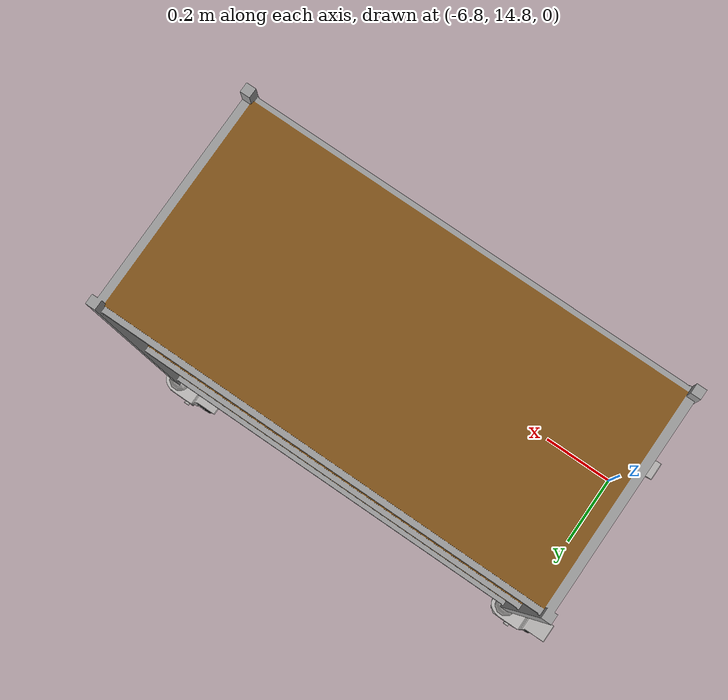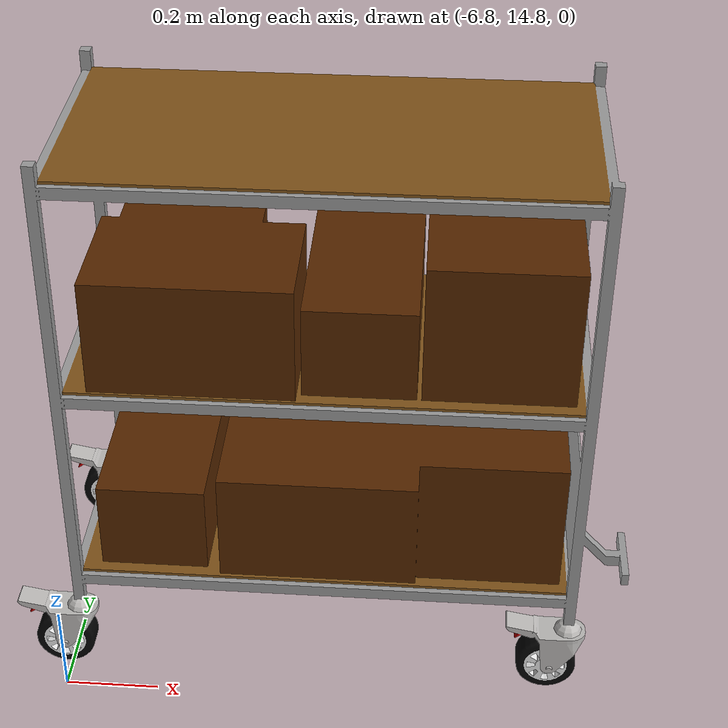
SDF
<sdf version="1.10">
 <world name="warehouse">
  <gravity>0 0 -9.8000000000000007</gravity>
  <physics type="ode">
   <max_step_size>0.01</max_step_size>
   <real_time_factor>1</real_time_factor>
   <real_time_update_rate>1000</real_time_update_rate>
  </physics>
  <plugin filename="gz-sim-physics-system" name="gz::sim::systems::Physics"/>
  <plugin filename="gz-sim-user-commands-system" name="gz::sim::systems::UserCommands"/>
  <plugin filename="gz-sim-scene-broadcaster-system" name="gz::sim::systems::SceneBroadcaster"/>
  <plugin filename="ignition-gazebo-sensors-system" name="gz::sim::systems::Sensors">
   <render_engine>ogre2</render_engine>
  </plugin>
  <plugin filename="gz-sim-imu-system" name="gz::sim::systems::Imu"/>
  <scene>
   <ambient>1 1 1 1</ambient>
   <background>0.300000012 0.699999988 0.899999976 1</background>
   <shadows>false</shadows>
   <grid>false</grid>
  </scene>
  <magnetic_field>5.5644999999999998e-06 2.2875799999999999e-05 -4.2388400000000002e-05</magnetic_field>
  <atmosphere type="adiabatic"/>
  <model name="ground_plane">
   <static>true</static>
   <link name="link">
    <collision name="collision">
     <geometry><plane><normal>0 0 1</normal><size>1 1</size></plane></geometry>
    </collision>
    <inertial>
     <mass>1</mass>
     <inertia><ixx>1</ixx><ixy>0</ixy><ixz>0</ixz><iyy>1</iyy><iyz>0</iyz><izz>1</izz></inertia>
    </inertial>
   </link>
  </model>
  <model name="controllable_camera">
   <pose>10 0 70 -1.5707 1.5707 0</pose>
   <static>true</static>
   <link name="base_link">
    <inertial><mass>0.1</mass><inertia><ixx>0.0001</ixx><iyy>0.0001</iyy><izz>0.0001</izz></inertia></inertial>
    <sensor name="gui_camera" type="rgbd_camera">
     <camera name="camera_front">
      <horizontal_fov>1.0472</horizontal_fov>
      <lens><intrinsics><fx>277.1</fx><fy>277.1</fy><cx>160.5</cx><cy>120.5</cy><s>0</s></intrinsics></lens>
      <distortion><k1>0.0</k1><k2>0.0</k2><k3>0.0</k3><p1>0.0</p1><p2>0.0</p2><center>0.5 0.5</center></distortion>
      <image><width>240</width><height>240</height><format>R8G8B8</format></image>
      <clip><near>0.01</near><far>300</far></clip>
      <depth_camera><clip><near>0.1</near><far>10</far></clip></depth_camera>
      <noise><type>gaussian</type><mean>0</mean><stddev>0.007</stddev></noise>
     </camera>
     <always_on>true</always_on>
     <update_rate>10</update_rate>
     <visualize>true</visualize>
    </sensor>
    <gravity>0</gravity>
   </link>
  </model>
  <include>
   <uri>https://fuel.ignitionrobotics.org/1.0/MovAi/models/cart_model_2</uri>
   <name>cart1</name>
   <pose>-5.7300000000000004 15 0.25 0 0 0</pose>
  </include>
  <light name="sun" type="directional">
   <pose>-5 -3 10 0 0 0</pose>
   <cast_shadows>false</cast_shadows>
   <intensity>1</intensity>
   <direction>0 0 -1</direction>
   <diffuse>1 1 1 1</diffuse>
   <specular>1 1 1 1</specular>
   <attenuation><range>10</range><linear>1</linear><constant>1</constant><quadratic>0</quadratic></attenuation>
   <spot><inner_angle>0</inner_angle><outer_angle>0</outer_angle><falloff>0</falloff></spot>
  </light>
 </world>
</sdf>

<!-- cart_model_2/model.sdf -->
<sdf version="1.7">
    <model name="cart_model2">
        <pose>0 0 0 0 0 0</pose>
        <!-- BASE_LINK FRAME -->
        <link name="base_link">
            <pose>0 0 0 0 0 -1.57079632679</pose>
            <inertial>
                <pose>0 -0.5 0.5 0 0 0</pose>
                <mass>30</mass>
                <inertia>
                    <ixx>0.1</ixx>
                    <ixy>0</ixy>
                    <ixz>0</ixz>
                    <iyy>0.1</iyy>
                    <iyz>0</iyz>
                    <izz>0.1</izz>
                </inertia>
            </inertial>
            <collision name="base_link_collision">
                <pose>0 0 0 0 0 0</pose>
                <geometry>
                    <mesh>
                        <scale>1 1 1</scale>
                        <uri>meshes/cart_base_collision.stl</uri>
                    </mesh>
                </geometry>
                <max_contacts>5</max_contacts>
                <surface>
                    <contact>
                        <ode>
                            <soft_cfm>1.0</soft_cfm>
                            <soft_erp>0.4</soft_erp>
                            <kp>1000000.0</kp>
                            <kd>1</kd>
                            <min_depth>0.01</min_depth>
                        </ode>
                    </contact>
                    <friction>
                        <ode>
                            <mu>1.16</mu>
                            <mu2>1.16</mu2>
                        </ode>
                    </friction>
                </surface>
            </collision>
            <visual name="base_link_visual">
                <pose>0 0 0 0 0 0</pose>
                <geometry>
                    <mesh>
                        <scale>1 1 1</scale>
                        <uri>meshes/cart_base.dae</uri>
                        <submesh>
                            <name>base_metal</name>
                            <center>false</center>
                        </submesh>
                    </mesh>
                </geometry>
            </visual>
            <visual name="base_shelf_visual">
                <pose>0 0 0 0 0 0</pose>
                <geometry>
                    <mesh>
                        <scale>1 1 1</scale>
                        <uri>meshes/cart_base.dae</uri>
                        <submesh>
                            <name>base_shelf</name>
                            <center>false</center>
                        </submesh>
                    </mesh>
                </geometry>
            </visual>
            <visual name="back_left_sup_visual">
                <pose>-0.245 -1.005 0.05 0 0 0</pose>
                <geometry>
                    <mesh>
                        <scale>1 1 1</scale>
                        <uri>meshes/sup_wheels.dae</uri>
                    </mesh>
                </geometry>
            </visual>
            <visual name="back_right_sup_visual">
                <pose>0.245 -1.005 0.05 0 0 0</pose>
                <geometry>
                    <mesh>
                        <scale>1 1 1</scale>
                        <uri>meshes/sup_wheels.dae</uri>
                    </mesh>
                </geometry>
            </visual>
            <visual name="tag_visual">
                <pose>0 0 0 0 0 0</pose>
                <geometry>
                    <mesh>
                        <scale>1 1 1</scale>
                        <uri>meshes/cart_base.dae</uri>
                        <submesh>
                            <name>tag</name>
                            <center>false</center>
                        </submesh>
                    </mesh>
                </geometry>
                <material>
                    <diffuse>1.0 1.0 1.0</diffuse>
                    <specular>1.0 1.0 1.0</specular>
                    <pbr>
                        <metal>
                            <albedo_map>meshes/cart_tag.png</albedo_map>
                        </metal>
                    </pbr>
                </material>
            </visual>
        </link>
        <!-- Wheels -->
        <!-- Back Left -->
        <link name="back_left">
            <pose>-1.04 -0.245 -0.05 0 0 1.570796327</pose>
            <inertial>
                <pose>0 0 0 0 1.570796327 0</pose>
                <mass>0.01</mass>
                <inertia>
                    <ixx>0.0000175</ixx>
                    <ixy>0</ixy>
                    <ixz>0</ixz>
                    <iyy>0.0000175</iyy>
                    <iyz>0</iyz>
                    <izz>0.00003125</izz>
                </inertia>
            </inertial>
            <collision name="back_left_collision">
                <pose>0 0 0 0 1.570796327 0</pose>
                <geometry>
                    <cylinder>
                        <length>0.03</length>
                        <radius>0.06</radius>
                    </cylinder>
                </geometry>
                <max_contacts>5</max_contacts>
                <surface>
                    <contact>
                        <ode>
                            <soft_cfm>1.0</soft_cfm>
                            <soft_erp>0.4</soft_erp>
                            <kp>1000000.0</kp>
                            <kd>1</kd>
                            <min_depth>0.01</min_depth>
                        </ode>
                    </contact>
                    <friction>
                        <ode>
                            <mu>1.16</mu>
                            <mu2>1.16</mu2>
                        </ode>
                    </friction>
                </surface>
            </collision>
            <visual name="back_left_visual">
                <pose>0 0 0 0 0 0</pose>
                <geometry>
                    <mesh>
                        <scale>1 1 1</scale>
                        <uri>meshes/wheel.dae</uri>
                    </mesh>
                </geometry>
            </visual>
        </link>
        <joint name="back_left_joint" type="revolute">
            <child>back_left</child>
            <parent>base_link</parent>
            <axis>
                <xyz>1 0 0</xyz>
                <dynamics>
                    <friction>0.5</friction>
                    <damping>0.0001</damping>
                </dynamics>
            </axis>
        </joint>
        <!-- Back Right -->
        <link name="back_right">
            <pose>-1.04 0.245 -0.05 0 0 1.570796327</pose>
            <inertial>
                <pose>0 0 0 0 1.570796327 0</pose>
                <mass>0.01</mass>
                <inertia>
                    <ixx>0.0000175</ixx>
                    <ixy>0</ixy>
                    <ixz>0</ixz>
                    <iyy>0.0000175</iyy>
                    <iyz>0</iyz>
                    <izz>0.00003125</izz>
                </inertia>
            </inertial>
            <collision name="back_right_collision">
                <pose>0 0 0 0 1.570796327 0</pose>
                <geometry>
                    <cylinder>
                        <length>0.03</length>
                        <radius>0.06</radius>
                    </cylinder>
                </geometry>
                <max_contacts>5</max_contacts>
                <surface>
                    <contact>
                        <ode>
                            <soft_cfm>1.0</soft_cfm>
                            <soft_erp>0.4</soft_erp>
                            <kp>1000000.0</kp>
                            <kd>1</kd>
                            <min_depth>0.01</min_depth>
                        </ode>
                    </contact>
                    <friction>
                        <ode>
                            <mu>1.16</mu>
                            <mu2>1.16</mu2>
                        </ode>
                    </friction>
                </surface>
            </collision>
            <visual name="back_right_visual">
                <pose>0 0 0 0 0 0</pose>
                <geometry>
                    <mesh>
                        <scale>1 1 1</scale>
                        <uri>meshes/wheel.dae</uri>
                    </mesh>
                </geometry>
            </visual>
        </link>
        <joint name="back_right_joint" type="revolute">
            <child>back_right</child>
            <parent>base_link</parent>
            <axis>
                <xyz>1 0 0</xyz>
                <dynamics>
                    <friction>0.5</friction>
                    <damping>0.0001</damping>
                </dynamics>
            </axis>
        </joint>
        <!-- Front Left -->
        <link name="wheel_sup_front_left">
            <pose>0 -0.245 0.05 0 0 1.570796327</pose>
            <inertial>
                <pose>0 0 0 0 0 0</pose>
                <mass>0.01</mass>
                <inertia>
                    <ixx>0.0000175</ixx>
                    <ixy>0</ixy>
                    <ixz>0</ixz>
                    <iyy>0.0000175</iyy>
                    <iyz>0</iyz>
                    <izz>0.0000175</izz>
                </inertia>
            </inertial>
            <visual name="wheel_sup_front_left_visual">
                <pose>0 0 0 0 0 3.14159265359</pose>
                <geometry>
                    <mesh>
                        <scale>1 1 1</scale>
                        <uri>meshes/sup_wheels.dae</uri>
                    </mesh>
                </geometry>
            </visual>
        </link>
        <joint name="wheel_sup_front_left_joint" type="revolute">
            <child>wheel_sup_front_left</child>
            <parent>base_link</parent>
            <axis>
                <xyz>0 0 1</xyz>
                <dynamics>
                    <damping>0.001</damping>
                </dynamics>
            </axis>
        </joint>
        <link name="front_left">
            <pose>-0.04 -0.245 -0.05 0 0 1.570796327</pose>
            <inertial>
                <pose>0 0 0 0 1.570796327 0</pose>
                <mass>0.01</mass>
                <inertia>
                    <ixx>0.0000175</ixx>
                    <ixy>0</ixy>
                    <ixz>0</ixz>
                    <iyy>0.0000175</iyy>
                    <iyz>0</iyz>
                    <izz>0.00003125</izz>
                </inertia>
            </inertial>
            <collision name="front_left_collision">
                <pose>0 0 0 0 1.570796327 0</pose>
                <geometry>
                    <cylinder>
                        <length>0.03</length>
                        <radius>0.06</radius>
                    </cylinder>
                </geometry>
                <max_contacts>5</max_contacts>
                <surface>
                    <contact>
                        <ode>
                            <soft_cfm>1.0</soft_cfm>
                            <soft_erp>0.4</soft_erp>
                            <kp>1000000.0</kp>
                            <kd>1</kd>
                            <min_depth>0.01</min_depth>
                        </ode>
                    </contact>
                    <friction>
                        <ode>
                            <mu>1.16</mu>
                            <mu2>1.16</mu2>
                        </ode>
                    </friction>
                </surface>
            </collision>
            <visual name="front_left_visual">
                <pose>0 0 0 0 0 0</pose>
                <geometry>
                    <mesh>
                        <scale>1 1 1</scale>
                        <uri>meshes/wheel.dae</uri>
                    </mesh>
                </geometry>
            </visual>
        </link>
        <joint name="front_left_joint" type="revolute">
            <child>front_left</child>
            <parent>wheel_sup_front_left</parent>
            <axis>
                <xyz>1 0 0</xyz>
                <dynamics>
                    <friction>0.5</friction>
                    <damping>0.0001</damping>
                </dynamics>
            </axis>
        </joint>
        <!-- Front Right -->
        <link name="wheel_sup_front_right">
            <pose>0 0.245 0.05 0 0 1.570796327</pose>
            <inertial>
                <pose>0 0 0 0 0 0</pose>
                <mass>0.01</mass>
                <inertia>
                    <ixx>0.0000175</ixx>
                    <ixy>0</ixy>
                    <ixz>0</ixz>
                    <iyy>0.0000175</iyy>
                    <iyz>0</iyz>
                    <izz>0.0000175</izz>
                </inertia>
            </inertial>
            <visual name="wheel_sup_front_right_visual">
                <pose>0 0 0 0 0 3.14159265359</pose>
                <geometry>
                    <mesh>
                        <scale>1 1 1</scale>
                        <uri>meshes/sup_wheels.dae</uri>
                    </mesh>
                </geometry>
            </visual>
        </link>
        <joint name="wheel_sup_front_right_joint" type="revolute">
            <child>wheel_sup_front_right</child>
            <parent>base_link</parent>
            <axis>
                <xyz>0 0 1</xyz>
                <dynamics>
                    <damping>0.001</damping>
                </dynamics>
            </axis>
        </joint>
        <link name="front_right">
            <pose>-0.04 0.245 -0.05 0 0 1.570796327</pose>
            <inertial>
                <pose>0 0 0 0 1.570796327 0</pose>
                <mass>0.01</mass>
                <inertia>
                    <ixx>0.0000175</ixx>
                    <ixy>0</ixy>
                    <ixz>0</ixz>
                    <iyy>0.0000175</iyy>
                    <iyz>0</iyz>
                    <izz>0.00003125</izz>
                </inertia>
            </inertial>
            <collision name="front_right_collision">
                <pose>0 0 0 0 1.570796327 0</pose>
                <geometry>
                    <cylinder>
                        <length>0.03</length>
                        <radius>0.06</radius>
                    </cylinder>
                </geometry>
                <max_contacts>5</max_contacts>
                <surface>
                    <contact>
                        <ode>
                            <soft_cfm>1.0</soft_cfm>
                            <soft_erp>0.4</soft_erp>
                            <kp>1000000.0</kp>
                            <kd>1</kd>
                            <min_depth>0.01</min_depth>
                        </ode>
                    </contact>
                    <friction>
                        <ode>
                            <mu>1.16</mu>
                            <mu2>1.16</mu2>
                        </ode>
                    </friction>
                </surface>
            </collision>
            <visual name="front_right_visual">
                <pose>0 0 0 0 0 0</pose>
                <geometry>
                    <mesh>
                        <scale>1 1 1</scale>
                        <uri>meshes/wheel.dae</uri>
                    </mesh>
                </geometry>
            </visual>
        </link>
        <joint name="front_right_joint" type="revolute">
            <child>front_right</child>
            <parent>wheel_sup_front_right</parent>
            <axis>
                <xyz>1 0 0</xyz>
                <dynamics>
                    <friction>0.5</friction>
                    <damping>0.0001</damping>
                </dynamics>
            </axis>
        </joint>
    </model>
</sdf>
